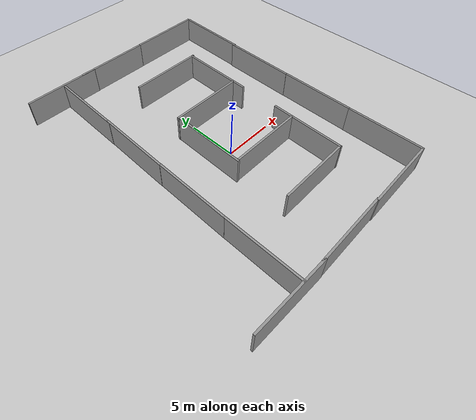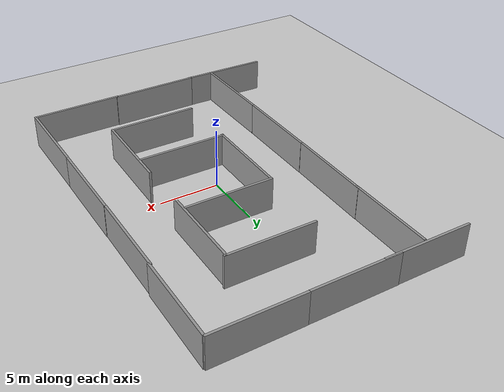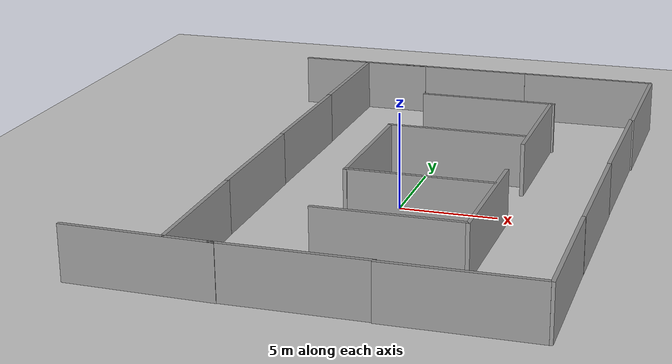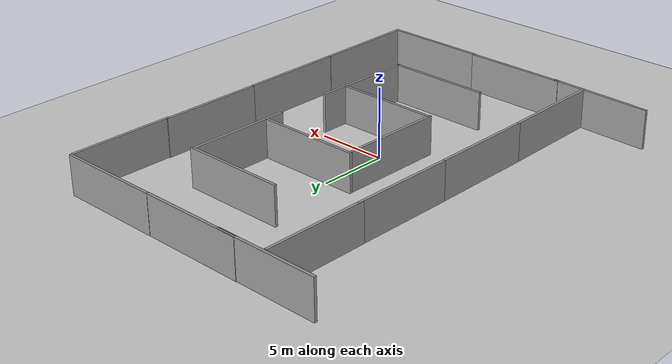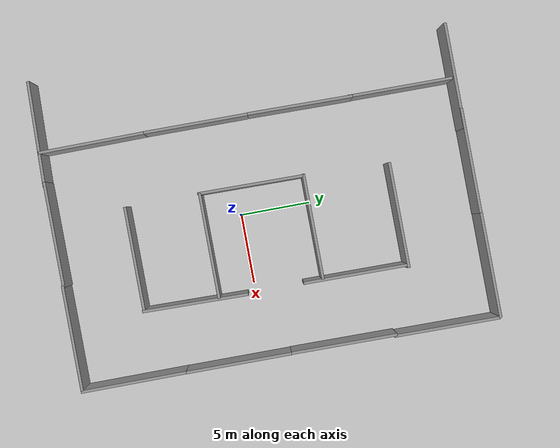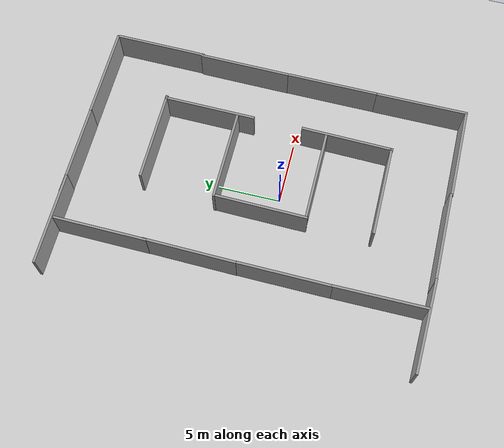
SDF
<sdf version="1.7">
 <world name="default">
  <light name="sun" type="directional">
   <pose>0 0 10 0 -0 0</pose>
   <diffuse>0.8 0.8 0.8 1</diffuse>
   <specular>0.2 0.2 0.2 1</specular>
   <attenuation>
    <range>1000</range>
    <constant>0.9</constant>
    <linear>0.01</linear>
    <quadratic>0.001</quadratic>
   </attenuation>
   <direction>-0.5 0.1 -0.9</direction>
   <spot><inner_angle>0</inner_angle><outer_angle>0</outer_angle><falloff>0</falloff></spot>
  </light>
  <model name="ground_plane">
   <static>1</static>
   <link name="link">
    <collision name="collision">
     <geometry><plane><normal>0 0 1</normal><size>100 100</size></plane></geometry>
     <surface>
      <contact><collide_bitmask>65535</collide_bitmask></contact>
      <friction><ode><mu>100</mu><mu2>50</mu2></ode></friction>
     </surface>
    </collision>
    <visual name="visual">
     <cast_shadows>0</cast_shadows>
     <geometry><plane><normal>0 0 1</normal><size>100 100</size></plane></geometry>
     <material>
      <script><uri>file://media/materials/scripts/gazebo.material</uri><name>Gazebo/Grey</name></script>
     </material>
    </visual>
   </link>
  </model>
  <gravity>0 0 -9.8</gravity>
  <magnetic_field>6e-06 2.3e-05 -4.2e-05</magnetic_field>
  <atmosphere type="adiabatic"/>
  <physics type="ode">
   <max_step_size>0.001</max_step_size>
   <real_time_factor>1</real_time_factor>
   <real_time_update_rate>1000</real_time_update_rate>
  </physics>
  <scene><ambient>0.4 0.4 0.4 1</ambient><background>0.7 0.7 0.7 1</background><shadows>1</shadows></scene>
  <spherical_coordinates>
   <surface_model>EARTH_WGS84</surface_model>
   <latitude_deg>0</latitude_deg>
   <longitude_deg>0</longitude_deg>
   <elevation>0</elevation>
   <heading_deg>0</heading_deg>
  </spherical_coordinates>
  <model name="grey_wall">
   <static>1</static>
   <link name="link">
    <pose>0 0 1.4 0 -0 0</pose>
    <collision name="collision"><geometry><box><size>7.5 0.2 2.8</size></box></geometry></collision>
    <visual name="visual">
     <cast_shadows>0</cast_shadows>
     <geometry><box><size>7.5 0.2 2.8</size></box></geometry>
     <material>
      <script>
       <uri>model://grey_wall/materials/scripts</uri>
       <uri>model://grey_wall/materials/textures</uri>
       <name>vrc/grey_wall</name>
      </script>
     </material>
    </visual>
   </link>
   <pose>1.70002 -2.53546 0 0 -0 0</pose>
  </model>
  <model name="grey_wall_0">
   <static>1</static>
   <link name="link">
    <pose>0 0 1.4 0 -0 0</pose>
    <collision name="collision"><geometry><box><size>7.5 0.2 2.8</size></box></geometry></collision>
    <visual name="visual">
     <cast_shadows>0</cast_shadows>
     <geometry><box><size>7.5 0.2 2.8</size></box></geometry>
     <material>
      <script>
       <uri>model://grey_wall/materials/scripts</uri>
       <uri>model://grey_wall/materials/textures</uri>
       <name>vrc/grey_wall</name>
      </script>
     </material>
    </visual>
   </link>
   <pose>-1.96311 1.06885 0 0 -0 1.55593</pose>
  </model>
  <model name="grey_wall_1">
   <static>1</static>
   <link name="link">
    <pose>0 0 1.4 0 -0 0</pose>
    <collision name="collision"><geometry><box><size>7.5 0.2 2.8</size></box></geometry></collision>
    <visual name="visual">
     <cast_shadows>0</cast_shadows>
     <geometry><box><size>7.5 0.2 2.8</size></box></geometry>
     <material>
      <script>
       <uri>model://grey_wall/materials/scripts</uri>
       <uri>model://grey_wall/materials/textures</uri>
       <name>vrc/grey_wall</name>
      </script>
     </material>
    </visual>
   </link>
   <pose>1.71405 4.85312 0 0 -0 0</pose>
  </model>
  <model name="grey_wall_2">
   <static>1</static>
   <link name="link">
    <pose>0 0 1.4 0 -0 0</pose>
    <collision name="collision"><geometry><box><size>7.5 0.2 2.8</size></box></geometry></collision>
    <visual name="visual">
     <cast_shadows>0</cast_shadows>
     <geometry><box><size>7.5 0.2 2.8</size></box></geometry>
     <material>
      <script>
       <uri>model://grey_wall/materials/scripts</uri>
       <uri>model://grey_wall/materials/textures</uri>
       <name>vrc/grey_wall</name>
      </script>
     </material>
    </visual>
   </link>
   <pose>5.44093 -4.23147 -0 0 -0 1.5501</pose>
  </model>
  <model name="grey_wall_3">
   <static>1</static>
   <link name="link">
    <pose>0 0 1.4 0 -0 0</pose>
    <collision name="collision"><geometry><box><size>7.5 0.2 2.8</size></box></geometry></collision>
    <visual name="visual">
     <cast_shadows>0</cast_shadows>
     <geometry><box><size>7.5 0.2 2.8</size></box></geometry>
     <material>
      <script>
       <uri>model://grey_wall/materials/scripts</uri>
       <uri>model://grey_wall/materials/textures</uri>
       <name>vrc/grey_wall</name>
      </script>
     </material>
    </visual>
   </link>
   <pose>1.69714 -7.85001 0 0 -0 0</pose>
  </model>
  <model name="grey_wall_4">
   <static>1</static>
   <link name="link">
    <pose>0 0 1.4 0 -0 0</pose>
    <collision name="collision"><geometry><box><size>7.5 0.2 2.8</size></box></geometry></collision>
    <visual name="visual">
     <cast_shadows>0</cast_shadows>
     <geometry><box><size>7.5 0.2 2.8</size></box></geometry>
     <material>
      <script>
       <uri>model://grey_wall/materials/scripts</uri>
       <uri>model://grey_wall/materials/textures</uri>
       <name>vrc/grey_wall</name>
      </script>
     </material>
    </visual>
   </link>
   <pose>2.02959 10.9047 0 0 -0 0</pose>
  </model>
  <model name="grey_wall_5">
   <static>1</static>
   <link name="link">
    <pose>0 0 1.4 0 -0 0</pose>
    <collision name="collision"><geometry><box><size>7.5 0.2 2.8</size></box></geometry></collision>
    <visual name="visual">
     <cast_shadows>0</cast_shadows>
     <geometry><box><size>7.5 0.2 2.8</size></box></geometry>
     <material>
      <script>
       <uri>model://grey_wall/materials/scripts</uri>
       <uri>model://grey_wall/materials/textures</uri>
       <name>vrc/grey_wall</name>
      </script>
     </material>
    </visual>
   </link>
   <pose>5.52559 7.2206 0 0 -0 1.56044</pose>
  </model>
  <model name="grey_wall_6">
   <static>1</static>
   <link name="link">
    <pose>0 0 1.4 0 -0 0</pose>
    <collision name="collision"><geometry><box><size>7.5 0.2 2.8</size></box></geometry></collision>
    <visual name="visual">
     <cast_shadows>0</cast_shadows>
     <geometry><box><size>7.5 0.2 2.8</size></box></geometry>
     <material>
      <script>
       <uri>model://grey_wall/materials/scripts</uri>
       <uri>model://grey_wall/materials/textures</uri>
       <name>vrc/grey_wall</name>
      </script>
     </material>
    </visual>
   </link>
   <pose>6.28586 -13.1369 0 0 -0 0</pose>
  </model>
  <model name="grey_wall_6_clone">
   <static>1</static>
   <link name="link">
    <pose>0 0 1.4 0 -0 0</pose>
    <collision name="collision"><geometry><box><size>7.5 0.2 2.8</size></box></geometry></collision>
    <visual name="visual">
     <cast_shadows>0</cast_shadows>
     <geometry><box><size>7.5 0.2 2.8</size></box></geometry>
     <material>
      <script>
       <uri>model://grey_wall/materials/scripts</uri>
       <uri>model://grey_wall/materials/textures</uri>
       <name>vrc/grey_wall</name>
      </script>
     </material>
    </visual>
   </link>
   <pose>-1.04589 -13.0746 0 0 -0 0</pose>
  </model>
  <model name="grey_wall_6_clone_0">
   <static>1</static>
   <link name="link">
    <pose>0 0 1.4 0 -0 0</pose>
    <collision name="collision"><geometry><box><size>7.5 0.2 2.8</size></box></geometry></collision>
    <visual name="visual">
     <cast_shadows>0</cast_shadows>
     <geometry><box><size>7.5 0.2 2.8</size></box></geometry>
     <material>
      <script>
       <uri>model://grey_wall/materials/scripts</uri>
       <uri>model://grey_wall/materials/textures</uri>
       <name>vrc/grey_wall</name>
      </script>
     </material>
    </visual>
   </link>
   <pose>-6.89408 -9.34682 0 0 -0 1.57461</pose>
  </model>
  <model name="grey_wall_6_clone_1">
   <static>1</static>
   <link name="link">
    <pose>0 0 1.4 0 -0 0</pose>
    <collision name="collision"><geometry><box><size>7.5 0.2 2.8</size></box></geometry></collision>
    <visual name="visual">
     <cast_shadows>0</cast_shadows>
     <geometry><box><size>7.5 0.2 2.8</size></box></geometry>
     <material>
      <script>
       <uri>model://grey_wall/materials/scripts</uri>
       <uri>model://grey_wall/materials/textures</uri>
       <name>vrc/grey_wall</name>
      </script>
     </material>
    </visual>
   </link>
   <pose>-6.88459 -1.96927 0 0 -0 1.56284</pose>
  </model>
  <model name="grey_wall_6_clone_2">
   <static>1</static>
   <link name="link">
    <pose>0 0 1.4 0 -0 0</pose>
    <collision name="collision"><geometry><box><size>7.5 0.2 2.8</size></box></geometry></collision>
    <visual name="visual">
     <cast_shadows>0</cast_shadows>
     <geometry><box><size>7.5 0.2 2.8</size></box></geometry>
     <material>
      <script>
       <uri>model://grey_wall/materials/scripts</uri>
       <uri>model://grey_wall/materials/textures</uri>
       <name>vrc/grey_wall</name>
      </script>
     </material>
    </visual>
   </link>
   <pose>-6.81204 5.49354 0 0 -0 1.55476</pose>
  </model>
  <model name="grey_wall_6_clone_3">
   <static>1</static>
   <link name="link">
    <pose>0 0 1.4 0 -0 0</pose>
    <collision name="collision"><geometry><box><size>7.5 0.2 2.8</size></box></geometry></collision>
    <visual name="visual">
     <cast_shadows>0</cast_shadows>
     <geometry><box><size>7.5 0.2 2.8</size></box></geometry>
     <material>
      <script>
       <uri>model://grey_wall/materials/scripts</uri>
       <uri>model://grey_wall/materials/textures</uri>
       <name>vrc/grey_wall</name>
      </script>
     </material>
    </visual>
   </link>
   <pose>-6.74053 12.5927 0 0 -0 1.56175</pose>
  </model>
  <model name="grey_wall_6_clone_4">
   <static>1</static>
   <link name="link">
    <pose>0 0 1.4 0 -0 0</pose>
    <collision name="collision"><geometry><box><size>7.5 0.2 2.8</size></box></geometry></collision>
    <visual name="visual">
     <cast_shadows>0</cast_shadows>
     <geometry><box><size>7.5 0.2 2.8</size></box></geometry>
     <material>
      <script>
       <uri>model://grey_wall/materials/scripts</uri>
       <uri>model://grey_wall/materials/textures</uri>
       <name>vrc/grey_wall</name>
      </script>
     </material>
    </visual>
   </link>
   <pose>6.65992 16.5662 0 0 -0 0</pose>
  </model>
  <model name="grey_wall_6_clone_5">
   <static>1</static>
   <link name="link">
    <pose>0 0 1.4 0 -0 0</pose>
    <collision name="collision"><geometry><box><size>7.5 0.2 2.8</size></box></geometry></collision>
    <visual name="visual">
     <cast_shadows>0</cast_shadows>
     <geometry><box><size>7.5 0.2 2.8</size></box></geometry>
     <material>
      <script>
       <uri>model://grey_wall/materials/scripts</uri>
       <uri>model://grey_wall/materials/textures</uri>
       <name>vrc/grey_wall</name>
      </script>
     </material>
    </visual>
   </link>
   <pose>10.1797 5.48528 0 0 -0 1.55996</pose>
  </model>
  <model name="grey_wall_6_clone_6">
   <static>1</static>
   <link name="link">
    <pose>0 0 1.4 0 -0 0</pose>
    <collision name="collision"><geometry><box><size>7.5 0.2 2.8</size></box></geometry></collision>
    <visual name="visual">
     <cast_shadows>0</cast_shadows>
     <geometry><box><size>7.5 0.2 2.8</size></box></geometry>
     <material>
      <script>
       <uri>model://grey_wall/materials/scripts</uri>
       <uri>model://grey_wall/materials/textures</uri>
       <name>vrc/grey_wall</name>
      </script>
     </material>
    </visual>
   </link>
   <pose>10.1368 -2.01389 0 0 -0 1.5649</pose>
  </model>
  <model name="grey_wall_6_clone_7">
   <static>1</static>
   <link name="link">
    <pose>0 0 1.4 0 -0 0</pose>
    <collision name="collision"><geometry><box><size>7.5 0.2 2.8</size></box></geometry></collision>
    <visual name="visual">
     <cast_shadows>0</cast_shadows>
     <geometry><box><size>7.5 0.2 2.8</size></box></geometry>
     <material>
      <script>
       <uri>model://grey_wall/materials/scripts</uri>
       <uri>model://grey_wall/materials/textures</uri>
       <name>vrc/grey_wall</name>
      </script>
     </material>
    </visual>
   </link>
   <pose>10.1001 -9.48105 0 0 -0 1.56964</pose>
  </model>
  <model name="grey_wall_6_clone_8">
   <static>1</static>
   <link name="link">
    <pose>0 0 1.4 0 -0 0</pose>
    <collision name="collision"><geometry><box><size>7.5 0.2 2.8</size></box></geometry></collision>
    <visual name="visual">
     <cast_shadows>0</cast_shadows>
     <geometry><box><size>7.5 0.2 2.8</size></box></geometry>
     <material>
      <script>
       <uri>model://grey_wall/materials/scripts</uri>
       <uri>model://grey_wall/materials/textures</uri>
       <name>vrc/grey_wall</name>
      </script>
     </material>
    </visual>
   </link>
   <pose>-0.765591 16.5511 0 0 -0 0</pose>
  </model>
  <model name="grey_wall_6_clone_5_clone">
   <static>1</static>
   <link name="link">
    <pose>0 0 1.4 0 -0 0</pose>
    <collision name="collision"><geometry><box><size>7.5 0.2 2.8</size></box></geometry></collision>
    <visual name="visual">
     <cast_shadows>0</cast_shadows>
     <geometry><box><size>7.5 0.2 2.8</size></box></geometry>
     <material>
      <script>
       <uri>model://grey_wall/materials/scripts</uri>
       <uri>model://grey_wall/materials/textures</uri>
       <name>vrc/grey_wall</name>
      </script>
     </material>
    </visual>
   </link>
   <pose>10.3364 12.7719 0 0 -0 1.55996</pose>
  </model>
  <model name="grey_wall_6_clone_5_clone_0">
   <static>1</static>
   <link name="link">
    <pose>0 0 1.4 0 -0 0</pose>
    <collision name="collision"><geometry><box><size>7.5 0.2 2.8</size></box></geometry></collision>
    <visual name="visual">
     <cast_shadows>0</cast_shadows>
     <geometry><box><size>7.5 0.2 2.8</size></box></geometry>
     <material>
      <script>
       <uri>model://grey_wall/materials/scripts</uri>
       <uri>model://grey_wall/materials/textures</uri>
       <name>vrc/grey_wall</name>
      </script>
     </material>
    </visual>
   </link>
   <pose>-8.18568 -12.9984 -0 0 -0 3.11296</pose>
  </model>
  <model name="grey_wall_6_clone_8_clone">
   <static>1</static>
   <link name="link">
    <pose>0 0 1.4 0 -0 0</pose>
    <collision name="collision"><geometry><box><size>7.5 0.2 2.8</size></box></geometry></collision>
    <visual name="visual">
     <cast_shadows>0</cast_shadows>
     <geometry><box><size>7.5 0.2 2.8</size></box></geometry>
     <material>
      <script>
       <uri>model://grey_wall/materials/scripts</uri>
       <uri>model://grey_wall/materials/textures</uri>
       <name>vrc/grey_wall</name>
      </script>
     </material>
    </visual>
   </link>
   <pose>-6.83249 16.5214 0 0 -0 0</pose>
  </model>
 </world>
</sdf>
